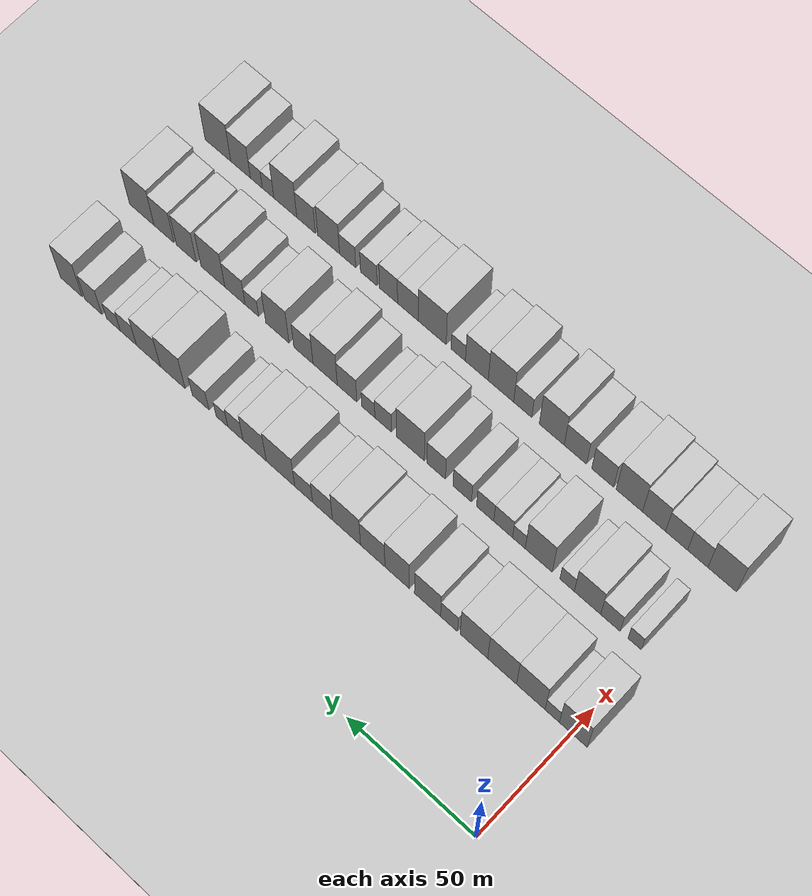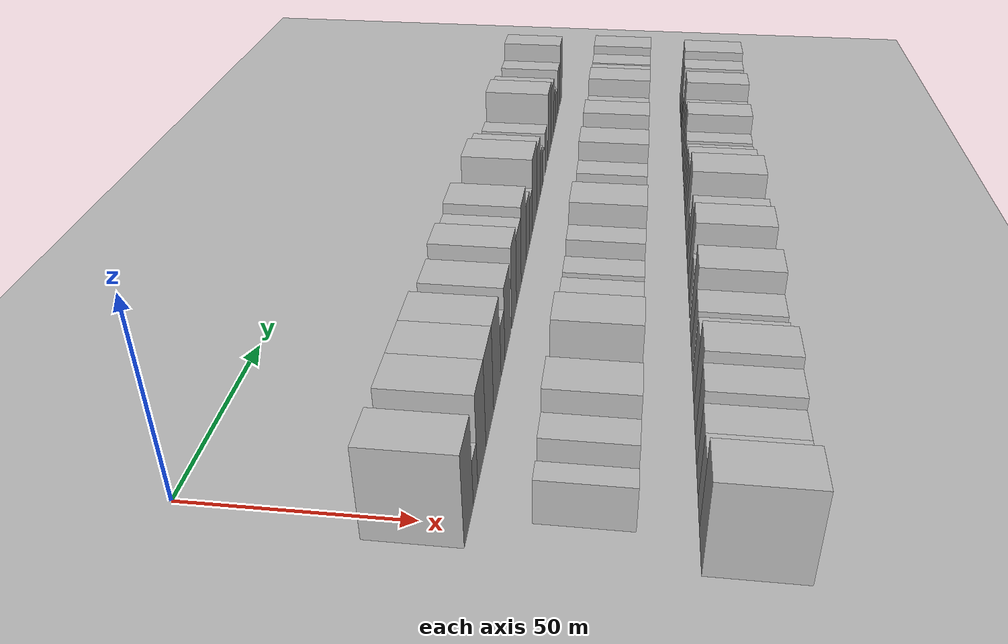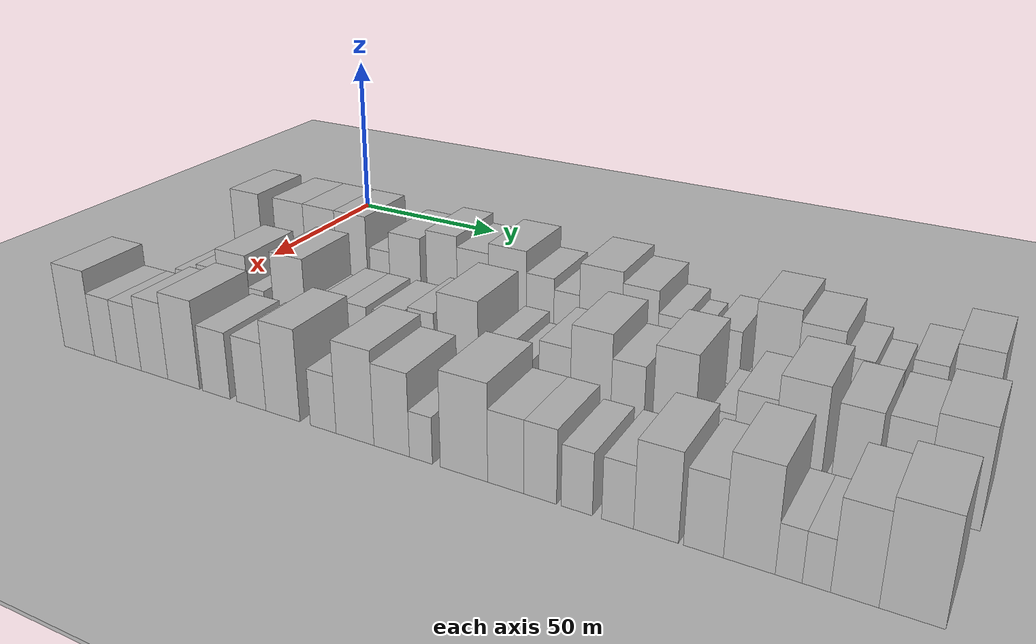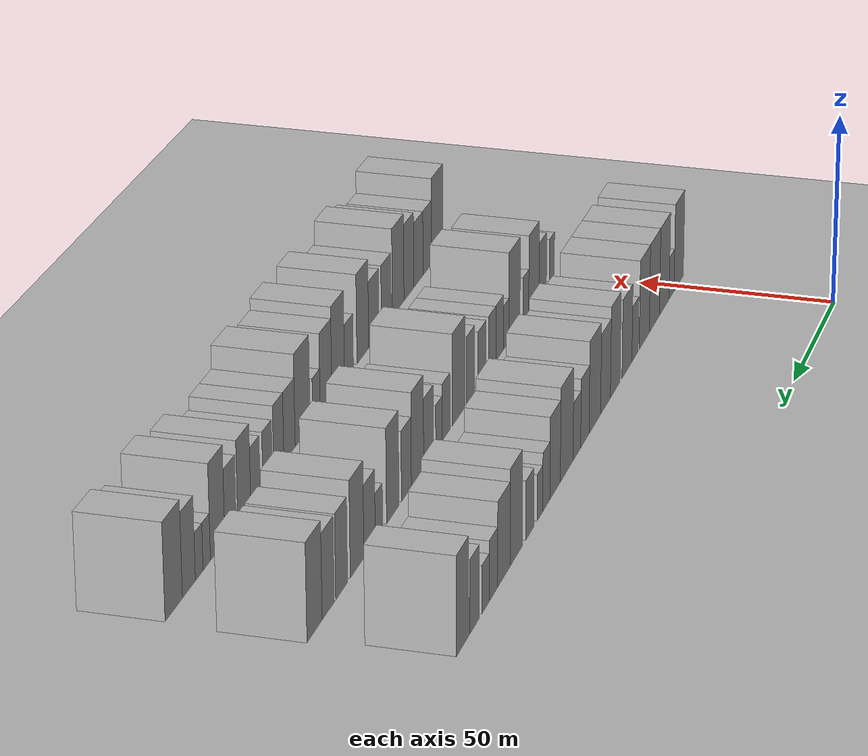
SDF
<sdf version="1.6">
 <world name="default">
  <include><name>ground_plane_1</name><uri>model://HANNAS_ground_plane</uri></include>
  <include>
   <name>ground_plane_2</name>
   <uri>model://HANNAS_ground_plane</uri>
   <pose>100 0 0  0 0 0</pose>
  </include>
  <model name="building_63">
   <static>1</static>
   <pose>50.0000 -0.7746 0 0.000000 0.000000 0.000000</pose>
   <link name="link">
    <pose>0 0 12.00 0 0 0</pose>
    <collision name="collision"><geometry><box><size>20.0000 10.5817 24.0000</size></box></geometry></collision>
    <visual name="visual">
     <cast_shadows>0</cast_shadows>
     <geometry><box><size>20.0000 10.5817 24.0000</size></box></geometry>
     <material>
      <script>
       <uri>model://HANNAS_wall/materials/scripts</uri>
       <uri>model://HANNAS_wall/materials/textures</uri>
       <name>vrc/HANNAS_wall</name>
      </script>
     </material>
    </visual>
   </link>
  </model>
  <model name="building_64">
   <static>1</static>
   <pose>50.0000 7.2375 0 0.000000 0.000000 0.000000</pose>
   <link name="link">
    <pose>0 0 6.00 0 0 0</pose>
    <collision name="collision"><geometry><box><size>20.0000 5.4426 12.0000</size></box></geometry></collision>
    <visual name="visual">
     <cast_shadows>0</cast_shadows>
     <geometry><box><size>20.0000 5.4426 12.0000</size></box></geometry>
     <material>
      <script>
       <uri>model://HANNAS_wall/materials/scripts</uri>
       <uri>model://HANNAS_wall/materials/textures</uri>
       <name>vrc/HANNAS_wall</name>
      </script>
     </material>
    </visual>
   </link>
  </model>
  <model name="building_65">
   <static>1</static>
   <pose>50.0000 15.4123 0 0.000000 0.000000 0.000000</pose>
   <link name="link">
    <pose>0 0 12.00 0 0 0</pose>
    <collision name="collision"><geometry><box><size>20.0000 10.9069 24.0000</size></box></geometry></collision>
    <visual name="visual">
     <cast_shadows>0</cast_shadows>
     <geometry><box><size>20.0000 10.9069 24.0000</size></box></geometry>
     <material>
      <script>
       <uri>model://HANNAS_wall/materials/scripts</uri>
       <uri>model://HANNAS_wall/materials/textures</uri>
       <name>vrc/HANNAS_wall</name>
      </script>
     </material>
    </visual>
   </link>
  </model>
  <model name="building_66">
   <static>1</static>
   <pose>50.0000 26.4303 0 0.000000 0.000000 0.000000</pose>
   <link name="link">
    <pose>0 0 12.00 0 0 0</pose>
    <collision name="collision"><geometry><box><size>20.0000 11.1291 24.0000</size></box></geometry></collision>
    <visual name="visual">
     <cast_shadows>0</cast_shadows>
     <geometry><box><size>20.0000 11.1291 24.0000</size></box></geometry>
     <material>
      <script>
       <uri>model://HANNAS_wall/materials/scripts</uri>
       <uri>model://HANNAS_wall/materials/textures</uri>
       <name>vrc/HANNAS_wall</name>
      </script>
     </material>
    </visual>
   </link>
  </model>
  <model name="building_67">
   <static>1</static>
   <pose>50.0000 37.3804 0 0.000000 0.000000 0.000000</pose>
   <link name="link">
    <pose>0 0 12.00 0 0 0</pose>
    <collision name="collision"><geometry><box><size>20.0000 10.7711 24.0000</size></box></geometry></collision>
    <visual name="visual">
     <cast_shadows>0</cast_shadows>
     <geometry><box><size>20.0000 10.7711 24.0000</size></box></geometry>
     <material>
      <script>
       <uri>model://HANNAS_wall/materials/scripts</uri>
       <uri>model://HANNAS_wall/materials/textures</uri>
       <name>vrc/HANNAS_wall</name>
      </script>
     </material>
    </visual>
   </link>
  </model>
  <model name="building_68">
   <static>1</static>
   <pose>50.0000 47.0913 0 0.000000 0.000000 0.000000</pose>
   <link name="link">
    <pose>0 0 7.50 0 0 0</pose>
    <collision name="collision"><geometry><box><size>20.0000 6.6505 15.0000</size></box></geometry></collision>
    <visual name="visual">
     <cast_shadows>0</cast_shadows>
     <geometry><box><size>20.0000 6.6505 15.0000</size></box></geometry>
     <material>
      <script>
       <uri>model://HANNAS_wall/materials/scripts</uri>
       <uri>model://HANNAS_wall/materials/textures</uri>
       <name>vrc/HANNAS_wall</name>
      </script>
     </material>
    </visual>
   </link>
  </model>
  <model name="building_69">
   <static>1</static>
   <pose>50.0000 55.5728 0 0.000000 0.000000 0.000000</pose>
   <link name="link">
    <pose>0 0 10.50 0 0 0</pose>
    <collision name="collision"><geometry><box><size>20.0000 10.3126 21.0000</size></box></geometry></collision>
    <visual name="visual">
     <cast_shadows>0</cast_shadows>
     <geometry><box><size>20.0000 10.3126 21.0000</size></box></geometry>
     <material>
      <script>
       <uri>model://HANNAS_wall/materials/scripts</uri>
       <uri>model://HANNAS_wall/materials/textures</uri>
       <name>vrc/HANNAS_wall</name>
      </script>
     </material>
    </visual>
   </link>
  </model>
  <model name="building_70">
   <static>1</static>
   <pose>50.0000 67.6036 0 0.000000 0.000000 0.000000</pose>
   <link name="link">
    <pose>0 0 12.00 0 0 0</pose>
    <collision name="collision"><geometry><box><size>20.0000 9.7489 24.0000</size></box></geometry></collision>
    <visual name="visual">
     <cast_shadows>0</cast_shadows>
     <geometry><box><size>20.0000 9.7489 24.0000</size></box></geometry>
     <material>
      <script>
       <uri>model://HANNAS_wall/materials/scripts</uri>
       <uri>model://HANNAS_wall/materials/textures</uri>
       <name>vrc/HANNAS_wall</name>
      </script>
     </material>
    </visual>
   </link>
  </model>
  <model name="building_71">
   <static>1</static>
   <pose>50.0000 77.3796 0 0.000000 0.000000 0.000000</pose>
   <link name="link">
    <pose>0 0 10.50 0 0 0</pose>
    <collision name="collision"><geometry><box><size>20.0000 9.8032 21.0000</size></box></geometry></collision>
    <visual name="visual">
     <cast_shadows>0</cast_shadows>
     <geometry><box><size>20.0000 9.8032 21.0000</size></box></geometry>
     <material>
      <script>
       <uri>model://HANNAS_wall/materials/scripts</uri>
       <uri>model://HANNAS_wall/materials/textures</uri>
       <name>vrc/HANNAS_wall</name>
      </script>
     </material>
    </visual>
   </link>
  </model>
  <model name="building_72">
   <static>1</static>
   <pose>50.0000 87.9492 0 0.000000 0.000000 0.000000</pose>
   <link name="link">
    <pose>0 0 12.00 0 0 0</pose>
    <collision name="collision"><geometry><box><size>20.0000 11.3358 24.0000</size></box></geometry></collision>
    <visual name="visual">
     <cast_shadows>0</cast_shadows>
     <geometry><box><size>20.0000 11.3358 24.0000</size></box></geometry>
     <material>
      <script>
       <uri>model://HANNAS_wall/materials/scripts</uri>
       <uri>model://HANNAS_wall/materials/textures</uri>
       <name>vrc/HANNAS_wall</name>
      </script>
     </material>
    </visual>
   </link>
  </model>
  <model name="building_73">
   <static>1</static>
   <pose>50.0000 97.6649 0 0.000000 0.000000 0.000000</pose>
   <link name="link">
    <pose>0 0 9.00 0 0 0</pose>
    <collision name="collision"><geometry><box><size>20.0000 8.0957 18.0000</size></box></geometry></collision>
    <visual name="visual">
     <cast_shadows>0</cast_shadows>
     <geometry><box><size>20.0000 8.0957 18.0000</size></box></geometry>
     <material>
      <script>
       <uri>model://HANNAS_wall/materials/scripts</uri>
       <uri>model://HANNAS_wall/materials/textures</uri>
       <name>vrc/HANNAS_wall</name>
      </script>
     </material>
    </visual>
   </link>
  </model>
  <model name="building_74">
   <static>1</static>
   <pose>50.0000 105.3468 0 0.000000 0.000000 0.000000</pose>
   <link name="link">
    <pose>0 0 7.50 0 0 0</pose>
    <collision name="collision"><geometry><box><size>20.0000 7.2680 15.0000</size></box></geometry></collision>
    <visual name="visual">
     <cast_shadows>0</cast_shadows>
     <geometry><box><size>20.0000 7.2680 15.0000</size></box></geometry>
     <material>
      <script>
       <uri>model://HANNAS_wall/materials/scripts</uri>
       <uri>model://HANNAS_wall/materials/textures</uri>
       <name>vrc/HANNAS_wall</name>
      </script>
     </material>
    </visual>
   </link>
  </model>
  <model name="building_75">
   <static>1</static>
   <pose>50.0000 114.8749 0 0.000000 0.000000 0.000000</pose>
   <link name="link">
    <pose>0 0 12.00 0 0 0</pose>
    <collision name="collision"><geometry><box><size>20.0000 11.7882 24.0000</size></box></geometry></collision>
    <visual name="visual">
     <cast_shadows>0</cast_shadows>
     <geometry><box><size>20.0000 11.7882 24.0000</size></box></geometry>
     <material>
      <script>
       <uri>model://HANNAS_wall/materials/scripts</uri>
       <uri>model://HANNAS_wall/materials/textures</uri>
       <name>vrc/HANNAS_wall</name>
      </script>
     </material>
    </visual>
   </link>
  </model>
  <model name="building_76">
   <static>1</static>
   <pose>50.0000 125.6066 0 0.000000 0.000000 0.000000</pose>
   <link name="link">
    <pose>0 0 10.50 0 0 0</pose>
    <collision name="collision"><geometry><box><size>20.0000 9.6752 21.0000</size></box></geometry></collision>
    <visual name="visual">
     <cast_shadows>0</cast_shadows>
     <geometry><box><size>20.0000 9.6752 21.0000</size></box></geometry>
     <material>
      <script>
       <uri>model://HANNAS_wall/materials/scripts</uri>
       <uri>model://HANNAS_wall/materials/textures</uri>
       <name>vrc/HANNAS_wall</name>
      </script>
     </material>
    </visual>
   </link>
  </model>
  <model name="building_77">
   <static>1</static>
   <pose>50.0000 133.6244 0 0.000000 0.000000 0.000000</pose>
   <link name="link">
    <pose>0 0 7.50 0 0 0</pose>
    <collision name="collision"><geometry><box><size>20.0000 6.3603 15.0000</size></box></geometry></collision>
    <visual name="visual">
     <cast_shadows>0</cast_shadows>
     <geometry><box><size>20.0000 6.3603 15.0000</size></box></geometry>
     <material>
      <script>
       <uri>model://HANNAS_wall/materials/scripts</uri>
       <uri>model://HANNAS_wall/materials/textures</uri>
       <name>vrc/HANNAS_wall</name>
      </script>
     </material>
    </visual>
   </link>
  </model>
  <model name="building_78">
   <static>1</static>
   <pose>50.0000 139.2482 0 0.000000 0.000000 0.000000</pose>
   <link name="link">
    <pose>0 0 6.00 0 0 0</pose>
    <collision name="collision"><geometry><box><size>20.0000 4.8872 12.0000</size></box></geometry></collision>
    <visual name="visual">
     <cast_shadows>0</cast_shadows>
     <geometry><box><size>20.0000 4.8872 12.0000</size></box></geometry>
     <material>
      <script>
       <uri>model://HANNAS_wall/materials/scripts</uri>
       <uri>model://HANNAS_wall/materials/textures</uri>
       <name>vrc/HANNAS_wall</name>
      </script>
     </material>
    </visual>
   </link>
  </model>
  <model name="building_79">
   <static>1</static>
   <pose>50.0000 148.2241 0 0.000000 0.000000 0.000000</pose>
   <link name="link">
    <pose>0 0 7.50 0 0 0</pose>
    <collision name="collision"><geometry><box><size>20.0000 7.0646 15.0000</size></box></geometry></collision>
    <visual name="visual">
     <cast_shadows>0</cast_shadows>
     <geometry><box><size>20.0000 7.0646 15.0000</size></box></geometry>
     <material>
      <script>
       <uri>model://HANNAS_wall/materials/scripts</uri>
       <uri>model://HANNAS_wall/materials/textures</uri>
       <name>vrc/HANNAS_wall</name>
      </script>
     </material>
    </visual>
   </link>
  </model>
  <model name="building_80">
   <static>1</static>
   <pose>50.0000 160.0485 0 0.000000 0.000000 0.000000</pose>
   <link name="link">
    <pose>0 0 12.00 0 0 0</pose>
    <collision name="collision"><geometry><box><size>20.0000 10.5842 24.0000</size></box></geometry></collision>
    <visual name="visual">
     <cast_shadows>0</cast_shadows>
     <geometry><box><size>20.0000 10.5842 24.0000</size></box></geometry>
     <material>
      <script>
       <uri>model://HANNAS_wall/materials/scripts</uri>
       <uri>model://HANNAS_wall/materials/textures</uri>
       <name>vrc/HANNAS_wall</name>
      </script>
     </material>
    </visual>
   </link>
  </model>
  <model name="building_81">
   <static>1</static>
   <pose>50.0000 170.4949 0 0.000000 0.000000 0.000000</pose>
   <link name="link">
    <pose>0 0 10.50 0 0 0</pose>
    <collision name="collision"><geometry><box><size>20.0000 10.3086 21.0000</size></box></geometry></collision>
    <visual name="visual">
     <cast_shadows>0</cast_shadows>
     <geometry><box><size>20.0000 10.3086 21.0000</size></box></geometry>
     <material>
      <script>
       <uri>model://HANNAS_wall/materials/scripts</uri>
       <uri>model://HANNAS_wall/materials/textures</uri>
       <name>vrc/HANNAS_wall</name>
      </script>
     </material>
    </visual>
   </link>
  </model>
  <model name="building_82">
   <static>1</static>
   <pose>50.0000 179.1332 0 0.000000 0.000000 0.000000</pose>
   <link name="link">
    <pose>0 0 7.50 0 0 0</pose>
    <collision name="collision"><geometry><box><size>20.0000 6.9681 15.0000</size></box></geometry></collision>
    <visual name="visual">
     <cast_shadows>0</cast_shadows>
     <geometry><box><size>20.0000 6.9681 15.0000</size></box></geometry>
     <material>
      <script>
       <uri>model://HANNAS_wall/materials/scripts</uri>
       <uri>model://HANNAS_wall/materials/textures</uri>
       <name>vrc/HANNAS_wall</name>
      </script>
     </material>
    </visual>
   </link>
  </model>
  <model name="building_83">
   <static>1</static>
   <pose>50.0000 185.5888 0 0.000000 0.000000 0.000000</pose>
   <link name="link">
    <pose>0 0 6.00 0 0 0</pose>
    <collision name="collision"><geometry><box><size>20.0000 5.9431 12.0000</size></box></geometry></collision>
    <visual name="visual">
     <cast_shadows>0</cast_shadows>
     <geometry><box><size>20.0000 5.9431 12.0000</size></box></geometry>
     <material>
      <script>
       <uri>model://HANNAS_wall/materials/scripts</uri>
       <uri>model://HANNAS_wall/materials/textures</uri>
       <name>vrc/HANNAS_wall</name>
      </script>
     </material>
    </visual>
   </link>
  </model>
  <model name="building_84">
   <static>1</static>
   <pose>50.0000 194.3236 0 0.000000 0.000000 0.000000</pose>
   <link name="link">
    <pose>0 0 9.00 0 0 0</pose>
    <collision name="collision"><geometry><box><size>20.0000 7.5263 18.0000</size></box></geometry></collision>
    <visual name="visual">
     <cast_shadows>0</cast_shadows>
     <geometry><box><size>20.0000 7.5263 18.0000</size></box></geometry>
     <material>
      <script>
       <uri>model://HANNAS_wall/materials/scripts</uri>
       <uri>model://HANNAS_wall/materials/textures</uri>
       <name>vrc/HANNAS_wall</name>
      </script>
     </material>
    </visual>
   </link>
  </model>
  <model name="building_85">
   <static>1</static>
   <pose>50.0000 203.9167 0 0.000000 0.000000 0.000000</pose>
   <link name="link">
    <pose>0 0 12.00 0 0 0</pose>
    <collision name="collision"><geometry><box><size>20.0000 9.6599 24.0000</size></box></geometry></collision>
    <visual name="visual">
     <cast_shadows>0</cast_shadows>
     <geometry><box><size>20.0000 9.6599 24.0000</size></box></geometry>
     <material>
      <script>
       <uri>model://HANNAS_wall/materials/scripts</uri>
       <uri>model://HANNAS_wall/materials/textures</uri>
       <name>vrc/HANNAS_wall</name>
      </script>
     </material>
    </visual>
   </link>
  </model>
  <model name="building_184">
   <static>1</static>
   <pose>82.0000 3.8384 0 0.000000 0.000000 0.000000</pose>
   <link name="link">
    <pose>0 0 6.00 0 0 0</pose>
    <collision name="collision"><geometry><box><size>20.0000 5.0956 12.0000</size></box></geometry></collision>
    <visual name="visual">
     <cast_shadows>0</cast_shadows>
     <geometry><box><size>20.0000 5.0956 12.0000</size></box></geometry>
     <material>
      <script>
       <uri>model://HANNAS_wall/materials/scripts</uri>
       <uri>model://HANNAS_wall/materials/textures</uri>
       <name>vrc/HANNAS_wall</name>
      </script>
     </material>
    </visual>
   </link>
  </model>
  <model name="building_185">
   <static>1</static>
   <pose>82.0000 13.1138 0 0.000000 0.000000 0.000000</pose>
   <link name="link">
    <pose>0 0 7.50 0 0 0</pose>
    <collision name="collision"><geometry><box><size>20.0000 7.4552 15.0000</size></box></geometry></collision>
    <visual name="visual">
     <cast_shadows>0</cast_shadows>
     <geometry><box><size>20.0000 7.4552 15.0000</size></box></geometry>
     <material>
      <script>
       <uri>model://HANNAS_wall/materials/scripts</uri>
       <uri>model://HANNAS_wall/materials/textures</uri>
       <name>vrc/HANNAS_wall</name>
      </script>
     </material>
    </visual>
   </link>
  </model>
  <model name="building_186">
   <static>1</static>
   <pose>82.0000 21.9345 0 0.000000 0.000000 0.000000</pose>
   <link name="link">
    <pose>0 0 10.50 0 0 0</pose>
    <collision name="collision"><geometry><box><size>20.0000 10.1861 21.0000</size></box></geometry></collision>
    <visual name="visual">
     <cast_shadows>0</cast_shadows>
     <geometry><box><size>20.0000 10.1861 21.0000</size></box></geometry>
     <material>
      <script>
       <uri>model://HANNAS_wall/materials/scripts</uri>
       <uri>model://HANNAS_wall/materials/textures</uri>
       <name>vrc/HANNAS_wall</name>
      </script>
     </material>
    </visual>
   </link>
  </model>
  <model name="building_187">
   <static>1</static>
   <pose>82.0000 29.8064 0 0.000000 0.000000 0.000000</pose>
   <link name="link">
    <pose>0 0 6.00 0 0 0</pose>
    <collision name="collision"><geometry><box><size>20.0000 5.5578 12.0000</size></box></geometry></collision>
    <visual name="visual">
     <cast_shadows>0</cast_shadows>
     <geometry><box><size>20.0000 5.5578 12.0000</size></box></geometry>
     <material>
      <script>
       <uri>model://HANNAS_wall/materials/scripts</uri>
       <uri>model://HANNAS_wall/materials/textures</uri>
       <name>vrc/HANNAS_wall</name>
      </script>
     </material>
    </visual>
   </link>
  </model>
  <model name="building_188">
   <static>1</static>
   <pose>82.0000 40.8626 0 0.000000 0.000000 0.000000</pose>
   <link name="link">
    <pose>0 0 12.00 0 0 0</pose>
    <collision name="collision"><geometry><box><size>20.0000 10.5546 24.0000</size></box></geometry></collision>
    <visual name="visual">
     <cast_shadows>0</cast_shadows>
     <geometry><box><size>20.0000 10.5546 24.0000</size></box></geometry>
     <material>
      <script>
       <uri>model://HANNAS_wall/materials/scripts</uri>
       <uri>model://HANNAS_wall/materials/textures</uri>
       <name>vrc/HANNAS_wall</name>
      </script>
     </material>
    </visual>
   </link>
  </model>
  <model name="building_189">
   <static>1</static>
   <pose>82.0000 48.6339 0 0.000000 0.000000 0.000000</pose>
   <link name="link">
    <pose>0 0 6.00 0 0 0</pose>
    <collision name="collision"><geometry><box><size>20.0000 4.9879 12.0000</size></box></geometry></collision>
    <visual name="visual">
     <cast_shadows>0</cast_shadows>
     <geometry><box><size>20.0000 4.9879 12.0000</size></box></geometry>
     <material>
      <script>
       <uri>model://HANNAS_wall/materials/scripts</uri>
       <uri>model://HANNAS_wall/materials/textures</uri>
       <name>vrc/HANNAS_wall</name>
      </script>
     </material>
    </visual>
   </link>
  </model>
  <model name="building_190">
   <static>1</static>
   <pose>82.0000 54.8418 0 0.000000 0.000000 0.000000</pose>
   <link name="link">
    <pose>0 0 7.50 0 0 0</pose>
    <collision name="collision"><geometry><box><size>20.0000 7.4280 15.0000</size></box></geometry></collision>
    <visual name="visual">
     <cast_shadows>0</cast_shadows>
     <geometry><box><size>20.0000 7.4280 15.0000</size></box></geometry>
     <material>
      <script>
       <uri>model://HANNAS_wall/materials/scripts</uri>
       <uri>model://HANNAS_wall/materials/textures</uri>
       <name>vrc/HANNAS_wall</name>
      </script>
     </material>
    </visual>
   </link>
  </model>
  <model name="building_191">
   <static>1</static>
   <pose>82.0000 61.9880 0 0.000000 0.000000 0.000000</pose>
   <link name="link">
    <pose>0 0 7.50 0 0 0</pose>
    <collision name="collision"><geometry><box><size>20.0000 6.8645 15.0000</size></box></geometry></collision>
    <visual name="visual">
     <cast_shadows>0</cast_shadows>
     <geometry><box><size>20.0000 6.8645 15.0000</size></box></geometry>
     <material>
      <script>
       <uri>model://HANNAS_wall/materials/scripts</uri>
       <uri>model://HANNAS_wall/materials/textures</uri>
       <name>vrc/HANNAS_wall</name>
      </script>
     </material>
    </visual>
   </link>
  </model>
  <model name="building_192">
   <static>1</static>
   <pose>82.0000 71.1349 0 0.000000 0.000000 0.000000</pose>
   <link name="link">
    <pose>0 0 7.50 0 0 0</pose>
    <collision name="collision"><geometry><box><size>20.0000 7.4292 15.0000</size></box></geometry></collision>
    <visual name="visual">
     <cast_shadows>0</cast_shadows>
     <geometry><box><size>20.0000 7.4292 15.0000</size></box></geometry>
     <material>
      <script>
       <uri>model://HANNAS_wall/materials/scripts</uri>
       <uri>model://HANNAS_wall/materials/textures</uri>
       <name>vrc/HANNAS_wall</name>
      </script>
     </material>
    </visual>
   </link>
  </model>
  <model name="building_193">
   <static>1</static>
   <pose>82.0000 81.6111 0 0.000000 0.000000 0.000000</pose>
   <link name="link">
    <pose>0 0 9.00 0 0 0</pose>
    <collision name="collision"><geometry><box><size>20.0000 7.5232 18.0000</size></box></geometry></collision>
    <visual name="visual">
     <cast_shadows>0</cast_shadows>
     <geometry><box><size>20.0000 7.5232 18.0000</size></box></geometry>
     <material>
      <script>
       <uri>model://HANNAS_wall/materials/scripts</uri>
       <uri>model://HANNAS_wall/materials/textures</uri>
       <name>vrc/HANNAS_wall</name>
      </script>
     </material>
    </visual>
   </link>
  </model>
  <model name="building_194">
   <static>1</static>
   <pose>82.0000 92.0338 0 0.000000 0.000000 0.000000</pose>
   <link name="link">
    <pose>0 0 12.00 0 0 0</pose>
    <collision name="collision"><geometry><box><size>20.0000 11.3222 24.0000</size></box></geometry></collision>
    <visual name="visual">
     <cast_shadows>0</cast_shadows>
     <geometry><box><size>20.0000 11.3222 24.0000</size></box></geometry>
     <material>
      <script>
       <uri>model://HANNAS_wall/materials/scripts</uri>
       <uri>model://HANNAS_wall/materials/textures</uri>
       <name>vrc/HANNAS_wall</name>
      </script>
     </material>
    </visual>
   </link>
  </model>
  <model name="building_195">
   <static>1</static>
   <pose>82.0000 103.1036 0 0.000000 0.000000 0.000000</pose>
   <link name="link">
    <pose>0 0 7.50 0 0 0</pose>
    <collision name="collision"><geometry><box><size>20.0000 6.8174 15.0000</size></box></geometry></collision>
    <visual name="visual">
     <cast_shadows>0</cast_shadows>
     <geometry><box><size>20.0000 6.8174 15.0000</size></box></geometry>
     <material>
      <script>
       <uri>model://HANNAS_wall/materials/scripts</uri>
       <uri>model://HANNAS_wall/materials/textures</uri>
       <name>vrc/HANNAS_wall</name>
      </script>
     </material>
    </visual>
   </link>
  </model>
  <model name="building_196">
   <static>1</static>
   <pose>82.0000 109.2151 0 0.000000 0.000000 0.000000</pose>
   <link name="link">
    <pose>0 0 6.00 0 0 0</pose>
    <collision name="collision"><geometry><box><size>20.0000 5.4055 12.0000</size></box></geometry></collision>
    <visual name="visual">
     <cast_shadows>0</cast_shadows>
     <geometry><box><size>20.0000 5.4055 12.0000</size></box></geometry>
     <material>
      <script>
       <uri>model://HANNAS_wall/materials/scripts</uri>
       <uri>model://HANNAS_wall/materials/textures</uri>
       <name>vrc/HANNAS_wall</name>
      </script>
     </material>
    </visual>
   </link>
  </model>
  <model name="building_197">
   <static>1</static>
   <pose>82.0000 117.9726 0 0.000000 0.000000 0.000000</pose>
   <link name="link">
    <pose>0 0 9.00 0 0 0</pose>
    <collision name="collision"><geometry><box><size>20.0000 8.1095 18.0000</size></box></geometry></collision>
    <visual name="visual">
     <cast_shadows>0</cast_shadows>
     <geometry><box><size>20.0000 8.1095 18.0000</size></box></geometry>
     <material>
      <script>
       <uri>model://HANNAS_wall/materials/scripts</uri>
       <uri>model://HANNAS_wall/materials/textures</uri>
       <name>vrc/HANNAS_wall</name>
      </script>
     </material>
    </visual>
   </link>
  </model>
  <model name="building_198">
   <static>1</static>
   <pose>82.0000 127.0954 0 0.000000 0.000000 0.000000</pose>
   <link name="link">
    <pose>0 0 12.00 0 0 0</pose>
    <collision name="collision"><geometry><box><size>20.0000 10.1362 24.0000</size></box></geometry></collision>
    <visual name="visual">
     <cast_shadows>0</cast_shadows>
     <geometry><box><size>20.0000 10.1362 24.0000</size></box></geometry>
     <material>
      <script>
       <uri>model://HANNAS_wall/materials/scripts</uri>
       <uri>model://HANNAS_wall/materials/textures</uri>
       <name>vrc/HANNAS_wall</name>
      </script>
     </material>
    </visual>
   </link>
  </model>
  <model name="building_199">
   <static>1</static>
   <pose>82.0000 136.1895 0 0.000000 0.000000 0.000000</pose>
   <link name="link">
    <pose>0 0 9.00 0 0 0</pose>
    <collision name="collision"><geometry><box><size>20.0000 8.0519 18.0000</size></box></geometry></collision>
    <visual name="visual">
     <cast_shadows>0</cast_shadows>
     <geometry><box><size>20.0000 8.0519 18.0000</size></box></geometry>
     <material>
      <script>
       <uri>model://HANNAS_wall/materials/scripts</uri>
       <uri>model://HANNAS_wall/materials/textures</uri>
       <name>vrc/HANNAS_wall</name>
      </script>
     </material>
    </visual>
   </link>
  </model>
  <model name="building_200">
   <static>1</static>
   <pose>82.0000 147.1438 0 0.000000 0.000000 0.000000</pose>
   <link name="link">
    <pose>0 0 12.00 0 0 0</pose>
    <collision name="collision"><geometry><box><size>20.0000 9.8567 24.0000</size></box></geometry></collision>
    <visual name="visual">
     <cast_shadows>0</cast_shadows>
     <geometry><box><size>20.0000 9.8567 24.0000</size></box></geometry>
     <material>
      <script>
       <uri>model://HANNAS_wall/materials/scripts</uri>
       <uri>model://HANNAS_wall/materials/textures</uri>
       <name>vrc/HANNAS_wall</name>
      </script>
     </material>
    </visual>
   </link>
  </model>
  <model name="building_201">
   <static>1</static>
   <pose>82.0000 157.9564 0 0.000000 0.000000 0.000000</pose>
   <link name="link">
    <pose>0 0 6.00 0 0 0</pose>
    <collision name="collision"><geometry><box><size>20.0000 5.7687 12.0000</size></box></geometry></collision>
    <visual name="visual">
     <cast_shadows>0</cast_shadows>
     <geometry><box><size>20.0000 5.7687 12.0000</size></box></geometry>
     <material>
      <script>
       <uri>model://HANNAS_wall/materials/scripts</uri>
       <uri>model://HANNAS_wall/materials/textures</uri>
       <name>vrc/HANNAS_wall</name>
      </script>
     </material>
    </visual>
   </link>
  </model>
  <model name="building_202">
   <static>1</static>
   <pose>82.0000 165.1837 0 0.000000 0.000000 0.000000</pose>
   <link name="link">
    <pose>0 0 9.00 0 0 0</pose>
    <collision name="collision"><geometry><box><size>20.0000 8.6859 18.0000</size></box></geometry></collision>
    <visual name="visual">
     <cast_shadows>0</cast_shadows>
     <geometry><box><size>20.0000 8.6859 18.0000</size></box></geometry>
     <material>
      <script>
       <uri>model://HANNAS_wall/materials/scripts</uri>
       <uri>model://HANNAS_wall/materials/textures</uri>
       <name>vrc/HANNAS_wall</name>
      </script>
     </material>
    </visual>
   </link>
  </model>
  <model name="building_203">
   <static>1</static>
   <pose>82.0000 174.6656 0 0.000000 0.000000 0.000000</pose>
   <link name="link">
    <pose>0 0 12.00 0 0 0</pose>
    <collision name="collision"><geometry><box><size>20.0000 10.2779 24.0000</size></box></geometry></collision>
    <visual name="visual">
     <cast_shadows>0</cast_shadows>
     <geometry><box><size>20.0000 10.2779 24.0000</size></box></geometry>
     <material>
      <script>
       <uri>model://HANNAS_wall/materials/scripts</uri>
       <uri>model://HANNAS_wall/materials/textures</uri>
       <name>vrc/HANNAS_wall</name>
      </script>
     </material>
    </visual>
   </link>
  </model>
  <model name="building_204">
   <static>1</static>
   <pose>82.0000 186.1765 0 0.000000 0.000000 0.000000</pose>
   <link name="link">
    <pose>0 0 10.50 0 0 0</pose>
    <collision name="collision"><geometry><box><size>20.0000 8.7438 21.0000</size></box></geometry></collision>
    <visual name="visual">
     <cast_shadows>0</cast_shadows>
     <geometry><box><size>20.0000 8.7438 21.0000</size></box></geometry>
     <material>
      <script>
       <uri>model://HANNAS_wall/materials/scripts</uri>
       <uri>model://HANNAS_wall/materials/textures</uri>
       <name>vrc/HANNAS_wall</name>
      </script>
     </material>
    </visual>
   </link>
  </model>
  <model name="building_205">
   <static>1</static>
   <pose>82.0000 195.9284 0 0.000000 0.000000 0.000000</pose>
   <link name="link">
    <pose>0 0 10.50 0 0 0</pose>
    <collision name="collision"><geometry><box><size>20.0000 8.7601 21.0000</size></box></geometry></collision>
    <visual name="visual">
     <cast_shadows>0</cast_shadows>
     <geometry><box><size>20.0000 8.7601 21.0000</size></box></geometry>
     <material>
      <script>
       <uri>model://HANNAS_wall/materials/scripts</uri>
       <uri>model://HANNAS_wall/materials/textures</uri>
       <name>vrc/HANNAS_wall</name>
      </script>
     </material>
    </visual>
   </link>
  </model>
  <model name="building_206">
   <static>1</static>
   <pose>82.0000 205.6940 0 0.000000 0.000000 0.000000</pose>
   <link name="link">
    <pose>0 0 12.00 0 0 0</pose>
    <collision name="collision"><geometry><box><size>20.0000 10.7711 24.0000</size></box></geometry></collision>
    <visual name="visual">
     <cast_shadows>0</cast_shadows>
     <geometry><box><size>20.0000 10.7711 24.0000</size></box></geometry>
     <material>
      <script>
       <uri>model://HANNAS_wall/materials/scripts</uri>
       <uri>model://HANNAS_wall/materials/textures</uri>
       <name>vrc/HANNAS_wall</name>
      </script>
     </material>
    </visual>
   </link>
  </model>
  <model name="building_304">
   <static>1</static>
   <pose>114.0000 -2.2634 0 0.000000 0.000000 0.000000</pose>
   <link name="link">
    <pose>0 0 12.00 0 0 0</pose>
    <collision name="collision"><geometry><box><size>20.0000 10.9393 24.0000</size></box></geometry></collision>
    <visual name="visual">
     <cast_shadows>0</cast_shadows>
     <geometry><box><size>20.0000 10.9393 24.0000</size></box></geometry>
     <material>
      <script>
       <uri>model://HANNAS_wall/materials/scripts</uri>
       <uri>model://HANNAS_wall/materials/textures</uri>
       <name>vrc/HANNAS_wall</name>
      </script>
     </material>
    </visual>
   </link>
  </model>
  <model name="building_305">
   <static>1</static>
   <pose>114.0000 7.0948 0 0.000000 0.000000 0.000000</pose>
   <link name="link">
    <pose>0 0 9.00 0 0 0</pose>
    <collision name="collision"><geometry><box><size>20.0000 7.7770 18.0000</size></box></geometry></collision>
    <visual name="visual">
     <cast_shadows>0</cast_shadows>
     <geometry><box><size>20.0000 7.7770 18.0000</size></box></geometry>
     <material>
      <script>
       <uri>model://HANNAS_wall/materials/scripts</uri>
       <uri>model://HANNAS_wall/materials/textures</uri>
       <name>vrc/HANNAS_wall</name>
      </script>
     </material>
    </visual>
   </link>
  </model>
  <model name="building_306">
   <static>1</static>
   <pose>114.0000 15.2341 0 0.000000 0.000000 0.000000</pose>
   <link name="link">
    <pose>0 0 9.00 0 0 0</pose>
    <collision name="collision"><geometry><box><size>20.0000 8.5017 18.0000</size></box></geometry></collision>
    <visual name="visual">
     <cast_shadows>0</cast_shadows>
     <geometry><box><size>20.0000 8.5017 18.0000</size></box></geometry>
     <material>
      <script>
       <uri>model://HANNAS_wall/materials/scripts</uri>
       <uri>model://HANNAS_wall/materials/textures</uri>
       <name>vrc/HANNAS_wall</name>
      </script>
     </material>
    </visual>
   </link>
  </model>
  <model name="building_307">
   <static>1</static>
   <pose>114.0000 23.9409 0 0.000000 0.000000 0.000000</pose>
   <link name="link">
    <pose>0 0 10.50 0 0 0</pose>
    <collision name="collision"><geometry><box><size>20.0000 8.9120 21.0000</size></box></geometry></collision>
    <visual name="visual">
     <cast_shadows>0</cast_shadows>
     <geometry><box><size>20.0000 8.9120 21.0000</size></box></geometry>
     <material>
      <script>
       <uri>model://HANNAS_wall/materials/scripts</uri>
       <uri>model://HANNAS_wall/materials/textures</uri>
       <name>vrc/HANNAS_wall</name>
      </script>
     </material>
    </visual>
   </link>
  </model>
  <model name="building_308">
   <static>1</static>
   <pose>114.0000 33.5465 0 0.000000 0.000000 0.000000</pose>
   <link name="link">
    <pose>0 0 12.00 0 0 0</pose>
    <collision name="collision"><geometry><box><size>20.0000 10.2993 24.0000</size></box></geometry></collision>
    <visual name="visual">
     <cast_shadows>0</cast_shadows>
     <geometry><box><size>20.0000 10.2993 24.0000</size></box></geometry>
     <material>
      <script>
       <uri>model://HANNAS_wall/materials/scripts</uri>
       <uri>model://HANNAS_wall/materials/textures</uri>
       <name>vrc/HANNAS_wall</name>
      </script>
     </material>
    </visual>
   </link>
  </model>
  <model name="building_309">
   <static>1</static>
   <pose>114.0000 44.0004 0 0.000000 0.000000 0.000000</pose>
   <link name="link">
    <pose>0 0 9.00 0 0 0</pose>
    <collision name="collision"><geometry><box><size>20.0000 8.6085 18.0000</size></box></geometry></collision>
    <visual name="visual">
     <cast_shadows>0</cast_shadows>
     <geometry><box><size>20.0000 8.6085 18.0000</size></box></geometry>
     <material>
      <script>
       <uri>model://HANNAS_wall/materials/scripts</uri>
       <uri>model://HANNAS_wall/materials/textures</uri>
       <name>vrc/HANNAS_wall</name>
      </script>
     </material>
    </visual>
   </link>
  </model>
  <model name="building_310">
   <static>1</static>
   <pose>114.0000 54.7427 0 0.000000 0.000000 0.000000</pose>
   <link name="link">
    <pose>0 0 9.00 0 0 0</pose>
    <collision name="collision"><geometry><box><size>20.0000 8.8761 18.0000</size></box></geometry></collision>
    <visual name="visual">
     <cast_shadows>0</cast_shadows>
     <geometry><box><size>20.0000 8.8761 18.0000</size></box></geometry>
     <material>
      <script>
       <uri>model://HANNAS_wall/materials/scripts</uri>
       <uri>model://HANNAS_wall/materials/textures</uri>
       <name>vrc/HANNAS_wall</name>
      </script>
     </material>
    </visual>
   </link>
  </model>
  <model name="building_311">
   <static>1</static>
   <pose>114.0000 64.1549 0 0.000000 0.000000 0.000000</pose>
   <link name="link">
    <pose>0 0 12.00 0 0 0</pose>
    <collision name="collision"><geometry><box><size>20.0000 9.9483 24.0000</size></box></geometry></collision>
    <visual name="visual">
     <cast_shadows>0</cast_shadows>
     <geometry><box><size>20.0000 9.9483 24.0000</size></box></geometry>
     <material>
      <script>
       <uri>model://HANNAS_wall/materials/scripts</uri>
       <uri>model://HANNAS_wall/materials/textures</uri>
       <name>vrc/HANNAS_wall</name>
      </script>
     </material>
    </visual>
   </link>
  </model>
  <model name="building_312">
   <static>1</static>
   <pose>114.0000 75.7566 0 0.000000 0.000000 0.000000</pose>
   <link name="link">
    <pose>0 0 7.50 0 0 0</pose>
    <collision name="collision"><geometry><box><size>20.0000 7.2550 15.0000</size></box></geometry></collision>
    <visual name="visual">
     <cast_shadows>0</cast_shadows>
     <geometry><box><size>20.0000 7.2550 15.0000</size></box></geometry>
     <material>
      <script>
       <uri>model://HANNAS_wall/materials/scripts</uri>
       <uri>model://HANNAS_wall/materials/textures</uri>
       <name>vrc/HANNAS_wall</name>
      </script>
     </material>
    </visual>
   </link>
  </model>
  <model name="building_313">
   <static>1</static>
   <pose>114.0000 84.5432 0 0.000000 0.000000 0.000000</pose>
   <link name="link">
    <pose>0 0 12.00 0 0 0</pose>
    <collision name="collision"><geometry><box><size>20.0000 10.3181 24.0000</size></box></geometry></collision>
    <visual name="visual">
     <cast_shadows>0</cast_shadows>
     <geometry><box><size>20.0000 10.3181 24.0000</size></box></geometry>
     <material>
      <script>
       <uri>model://HANNAS_wall/materials/scripts</uri>
       <uri>model://HANNAS_wall/materials/textures</uri>
       <name>vrc/HANNAS_wall</name>
      </script>
     </material>
    </visual>
   </link>
  </model>
  <model name="building_314">
   <static>1</static>
   <pose>114.0000 94.3654 0 0.000000 0.000000 0.000000</pose>
   <link name="link">
    <pose>0 0 10.50 0 0 0</pose>
    <collision name="collision"><geometry><box><size>20.0000 9.3264 21.0000</size></box></geometry></collision>
    <visual name="visual">
     <cast_shadows>0</cast_shadows>
     <geometry><box><size>20.0000 9.3264 21.0000</size></box></geometry>
     <material>
      <script>
       <uri>model://HANNAS_wall/materials/scripts</uri>
       <uri>model://HANNAS_wall/materials/textures</uri>
       <name>vrc/HANNAS_wall</name>
      </script>
     </material>
    </visual>
   </link>
  </model>
  <model name="building_315">
   <static>1</static>
   <pose>114.0000 101.9718 0 0.000000 0.000000 0.000000</pose>
   <link name="link">
    <pose>0 0 6.00 0 0 0</pose>
    <collision name="collision"><geometry><box><size>20.0000 5.8865 12.0000</size></box></geometry></collision>
    <visual name="visual">
     <cast_shadows>0</cast_shadows>
     <geometry><box><size>20.0000 5.8865 12.0000</size></box></geometry>
     <material>
      <script>
       <uri>model://HANNAS_wall/materials/scripts</uri>
       <uri>model://HANNAS_wall/materials/textures</uri>
       <name>vrc/HANNAS_wall</name>
      </script>
     </material>
    </visual>
   </link>
  </model>
  <model name="building_316">
   <static>1</static>
   <pose>114.0000 112.7241 0 0.000000 0.000000 0.000000</pose>
   <link name="link">
    <pose>0 0 12.00 0 0 0</pose>
    <collision name="collision"><geometry><box><size>20.0000 11.6180 24.0000</size></box></geometry></collision>
    <visual name="visual">
     <cast_shadows>0</cast_shadows>
     <geometry><box><size>20.0000 11.6180 24.0000</size></box></geometry>
     <material>
      <script>
       <uri>model://HANNAS_wall/materials/scripts</uri>
       <uri>model://HANNAS_wall/materials/textures</uri>
       <name>vrc/HANNAS_wall</name>
      </script>
     </material>
    </visual>
   </link>
  </model>
  <model name="building_317">
   <static>1</static>
   <pose>114.0000 122.8021 0 0.000000 0.000000 0.000000</pose>
   <link name="link">
    <pose>0 0 9.00 0 0 0</pose>
    <collision name="collision"><geometry><box><size>20.0000 8.5380 18.0000</size></box></geometry></collision>
    <visual name="visual">
     <cast_shadows>0</cast_shadows>
     <geometry><box><size>20.0000 8.5380 18.0000</size></box></geometry>
     <material>
      <script>
       <uri>model://HANNAS_wall/materials/scripts</uri>
       <uri>model://HANNAS_wall/materials/textures</uri>
       <name>vrc/HANNAS_wall</name>
      </script>
     </material>
    </visual>
   </link>
  </model>
  <model name="building_318">
   <static>1</static>
   <pose>114.0000 130.8454 0 0.000000 0.000000 0.000000</pose>
   <link name="link">
    <pose>0 0 9.00 0 0 0</pose>
    <collision name="collision"><geometry><box><size>20.0000 7.5487 18.0000</size></box></geometry></collision>
    <visual name="visual">
     <cast_shadows>0</cast_shadows>
     <geometry><box><size>20.0000 7.5487 18.0000</size></box></geometry>
     <material>
      <script>
       <uri>model://HANNAS_wall/materials/scripts</uri>
       <uri>model://HANNAS_wall/materials/textures</uri>
       <name>vrc/HANNAS_wall</name>
      </script>
     </material>
    </visual>
   </link>
  </model>
  <model name="building_319">
   <static>1</static>
   <pose>114.0000 139.1148 0 0.000000 0.000000 0.000000</pose>
   <link name="link">
    <pose>0 0 7.50 0 0 0</pose>
    <collision name="collision"><geometry><box><size>20.0000 6.9901 15.0000</size></box></geometry></collision>
    <visual name="visual">
     <cast_shadows>0</cast_shadows>
     <geometry><box><size>20.0000 6.9901 15.0000</size></box></geometry>
     <material>
      <script>
       <uri>model://HANNAS_wall/materials/scripts</uri>
       <uri>model://HANNAS_wall/materials/textures</uri>
       <name>vrc/HANNAS_wall</name>
      </script>
     </material>
    </visual>
   </link>
  </model>
  <model name="building_320">
   <static>1</static>
   <pose>114.0000 148.0420 0 0.000000 0.000000 0.000000</pose>
   <link name="link">
    <pose>0 0 7.50 0 0 0</pose>
    <collision name="collision"><geometry><box><size>20.0000 6.8642 15.0000</size></box></geometry></collision>
    <visual name="visual">
     <cast_shadows>0</cast_shadows>
     <geometry><box><size>20.0000 6.8642 15.0000</size></box></geometry>
     <material>
      <script>
       <uri>model://HANNAS_wall/materials/scripts</uri>
       <uri>model://HANNAS_wall/materials/textures</uri>
       <name>vrc/HANNAS_wall</name>
      </script>
     </material>
    </visual>
   </link>
  </model>
  <model name="building_321">
   <static>1</static>
   <pose>114.0000 156.1347 0 0.000000 0.000000 0.000000</pose>
   <link name="link">
    <pose>0 0 10.50 0 0 0</pose>
    <collision name="collision"><geometry><box><size>20.0000 9.3211 21.0000</size></box></geometry></collision>
    <visual name="visual">
     <cast_shadows>0</cast_shadows>
     <geometry><box><size>20.0000 9.3211 21.0000</size></box></geometry>
     <material>
      <script>
       <uri>model://HANNAS_wall/materials/scripts</uri>
       <uri>model://HANNAS_wall/materials/textures</uri>
       <name>vrc/HANNAS_wall</name>
      </script>
     </material>
    </visual>
   </link>
  </model>
  <model name="building_322">
   <static>1</static>
   <pose>114.0000 165.7800 0 0.000000 0.000000 0.000000</pose>
   <link name="link">
    <pose>0 0 9.00 0 0 0</pose>
    <collision name="collision"><geometry><box><size>20.0000 7.9695 18.0000</size></box></geometry></collision>
    <visual name="visual">
     <cast_shadows>0</cast_shadows>
     <geometry><box><size>20.0000 7.9695 18.0000</size></box></geometry>
     <material>
      <script>
       <uri>model://HANNAS_wall/materials/scripts</uri>
       <uri>model://HANNAS_wall/materials/textures</uri>
       <name>vrc/HANNAS_wall</name>
      </script>
     </material>
    </visual>
   </link>
  </model>
  <model name="building_323">
   <static>1</static>
   <pose>114.0000 174.7365 0 0.000000 0.000000 0.000000</pose>
   <link name="link">
    <pose>0 0 12.00 0 0 0</pose>
    <collision name="collision"><geometry><box><size>20.0000 9.9435 24.0000</size></box></geometry></collision>
    <visual name="visual">
     <cast_shadows>0</cast_shadows>
     <geometry><box><size>20.0000 9.9435 24.0000</size></box></geometry>
     <material>
      <script>
       <uri>model://HANNAS_wall/materials/scripts</uri>
       <uri>model://HANNAS_wall/materials/textures</uri>
       <name>vrc/HANNAS_wall</name>
      </script>
     </material>
    </visual>
   </link>
  </model>
  <model name="building_324">
   <static>1</static>
   <pose>114.0000 182.2143 0 0.000000 0.000000 0.000000</pose>
   <link name="link">
    <pose>0 0 6.00 0 0 0</pose>
    <collision name="collision"><geometry><box><size>20.0000 5.0120 12.0000</size></box></geometry></collision>
    <visual name="visual">
     <cast_shadows>0</cast_shadows>
     <geometry><box><size>20.0000 5.0120 12.0000</size></box></geometry>
     <material>
      <script>
       <uri>model://HANNAS_wall/materials/scripts</uri>
       <uri>model://HANNAS_wall/materials/textures</uri>
       <name>vrc/HANNAS_wall</name>
      </script>
     </material>
    </visual>
   </link>
  </model>
  <model name="building_325">
   <static>1</static>
   <pose>114.0000 187.2954 0 0.000000 0.000000 0.000000</pose>
   <link name="link">
    <pose>0 0 6.00 0 0 0</pose>
    <collision name="collision"><geometry><box><size>20.0000 5.1502 12.0000</size></box></geometry></collision>
    <visual name="visual">
     <cast_shadows>0</cast_shadows>
     <geometry><box><size>20.0000 5.1502 12.0000</size></box></geometry>
     <material>
      <script>
       <uri>model://HANNAS_wall/materials/scripts</uri>
       <uri>model://HANNAS_wall/materials/textures</uri>
       <name>vrc/HANNAS_wall</name>
      </script>
     </material>
    </visual>
   </link>
  </model>
  <model name="building_326">
   <static>1</static>
   <pose>114.0000 194.1511 0 0.000000 0.000000 0.000000</pose>
   <link name="link">
    <pose>0 0 10.50 0 0 0</pose>
    <collision name="collision"><geometry><box><size>20.0000 8.5612 21.0000</size></box></geometry></collision>
    <visual name="visual">
     <cast_shadows>0</cast_shadows>
     <geometry><box><size>20.0000 8.5612 21.0000</size></box></geometry>
     <material>
      <script>
       <uri>model://HANNAS_wall/materials/scripts</uri>
       <uri>model://HANNAS_wall/materials/textures</uri>
       <name>vrc/HANNAS_wall</name>
      </script>
     </material>
    </visual>
   </link>
  </model>
  <model name="building_327">
   <static>1</static>
   <pose>114.0000 204.0876 0 0.000000 0.000000 0.000000</pose>
   <link name="link">
    <pose>0 0 12.00 0 0 0</pose>
    <collision name="collision"><geometry><box><size>20.0000 11.3119 24.0000</size></box></geometry></collision>
    <visual name="visual">
     <cast_shadows>0</cast_shadows>
     <geometry><box><size>20.0000 11.3119 24.0000</size></box></geometry>
     <material>
      <script>
       <uri>model://HANNAS_wall/materials/scripts</uri>
       <uri>model://HANNAS_wall/materials/textures</uri>
       <name>vrc/HANNAS_wall</name>
      </script>
     </material>
    </visual>
   </link>
  </model>
 </world>
</sdf>
